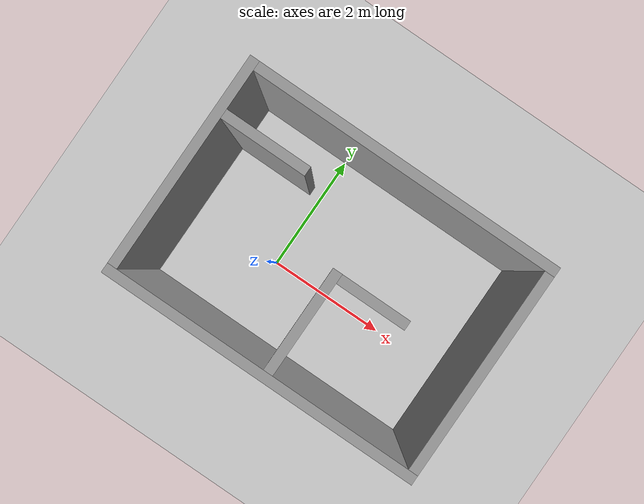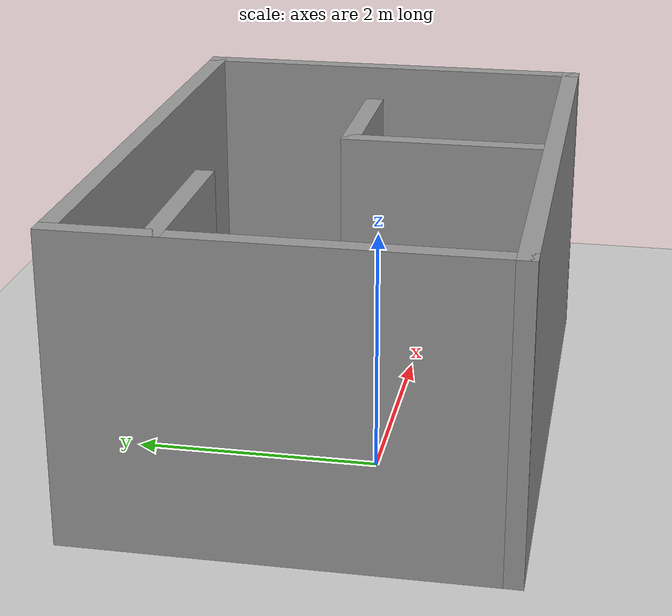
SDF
<sdf version="1.6">
 <world name="default">
  <light name="sun" type="directional">
   <pose>0 0 10 0 -0 0</pose>
   <diffuse>0.8 0.8 0.8 1</diffuse>
   <specular>0.2 0.2 0.2 1</specular>
   <attenuation>
    <range>1000</range>
    <constant>0.9</constant>
    <linear>0.01</linear>
    <quadratic>0.001</quadratic>
   </attenuation>
   <direction>-0.5 0.1 -0.9</direction>
  </light>
  <model name="ground_plane">
   <static>1</static>
   <link name="link">
    <collision name="collision">
     <geometry><plane><normal>0 0 1</normal><size>100 100</size></plane></geometry>
     <surface>
      <contact><collide_bitmask>65535</collide_bitmask></contact>
      <friction><ode><mu>100</mu><mu2>50</mu2></ode></friction>
     </surface>
    </collision>
    <visual name="visual">
     <cast_shadows>0</cast_shadows>
     <geometry><plane><normal>0 0 1</normal><size>100 100</size></plane></geometry>
     <material>
      <script><uri>file://media/materials/scripts/gazebo.material</uri><name>Gazebo/Grey</name></script>
     </material>
    </visual>
   </link>
  </model>
  <gravity>0 0 -9.8</gravity>
  <magnetic_field>6e-06 2.3e-05 -4.2e-05</magnetic_field>
  <atmosphere type="adiabatic"/>
  <physics name="default_physics" default="0" type="ode">
   <max_step_size>0.001</max_step_size>
   <real_time_factor>1</real_time_factor>
   <real_time_update_rate>1000</real_time_update_rate>
  </physics>
  <scene><ambient>0.4 0.4 0.4 1</ambient><background>0.7 0.7 0.7 1</background><shadows>1</shadows></scene>
  <audio><device>default</device></audio>
  <spherical_coordinates>
   <surface_model>EARTH_WGS84</surface_model>
   <latitude_deg>0</latitude_deg>
   <longitude_deg>0</longitude_deg>
   <elevation>0</elevation>
   <heading_deg>0</heading_deg>
  </spherical_coordinates>
  <model name="room">
   <pose>0.80771 0.408332 0 0 -0 0</pose>
   <link name="Wall_33">
    <collision name="Wall_33_Collision">
     <geometry><box><size>5 0.15 2.5</size></box></geometry>
     <pose>0 0 1.25 0 -0 0</pose>
    </collision>
    <visual name="Wall_33_Visual">
     <pose>0 0 1.25 0 -0 0</pose>
     <geometry><box><size>5 0.15 2.5</size></box></geometry>
     <material>
      <script><uri>file://media/materials/scripts/gazebo.material</uri><name>Gazebo/Grey</name></script>
      <ambient>1 1 1 1</ambient>
     </material>
     <meta><layer>0</layer></meta>
    </visual>
    <pose>-0 -1.675 0 0 -0 0</pose>
   </link>
   <link name="Wall_35">
    <collision name="Wall_35_Collision">
     <geometry><box><size>3.5 0.15 2.5</size></box></geometry>
     <pose>0 0 1.25 0 -0 0</pose>
    </collision>
    <visual name="Wall_35_Visual">
     <pose>0 0 1.25 0 -0 0</pose>
     <geometry><box><size>3.5 0.15 2.5</size></box></geometry>
     <material>
      <script><uri>file://media/materials/scripts/gazebo.material</uri><name>Gazebo/Grey</name></script>
      <ambient>1 1 1 1</ambient>
     </material>
     <meta><layer>0</layer></meta>
    </visual>
    <pose>-2.425 0 0 0 -0 1.5708</pose>
   </link>
   <link name="Wall_36">
    <collision name="Wall_36_Collision">
     <geometry><box><size>5 0.15 2.5</size></box></geometry>
     <pose>0 0 1.25 0 -0 0</pose>
    </collision>
    <visual name="Wall_36_Visual">
     <pose>0 0 1.25 0 -0 0</pose>
     <geometry><box><size>5 0.15 2.5</size></box></geometry>
     <material>
      <script><uri>file://media/materials/scripts/gazebo.material</uri><name>Gazebo/Grey</name></script>
      <ambient>1 1 1 1</ambient>
     </material>
     <meta><layer>0</layer></meta>
    </visual>
    <pose>-0 1.675 0 0 -0 0</pose>
   </link>
   <link name="Wall_37">
    <collision name="Wall_37_Collision">
     <geometry><box><size>3.5 0.15 2.5</size></box></geometry>
     <pose>0 0 1.25 0 -0 0</pose>
    </collision>
    <visual name="Wall_37_Visual">
     <pose>0 0 1.25 0 -0 0</pose>
     <geometry><box><size>3.5 0.15 2.5</size></box></geometry>
     <material>
      <script><uri>file://media/materials/scripts/gazebo.material</uri><name>Gazebo/Grey</name></script>
      <ambient>1 1 1 1</ambient>
     </material>
     <meta><layer>0</layer></meta>
    </visual>
    <pose>2.425 0 0 0 -0 -1.5708</pose>
   </link>
   <link name="Wall_39">
    <collision name="Wall_39_Collision">
     <geometry><box><size>1.75 0.15 2.5</size></box></geometry>
     <pose>0 0 1.25 0 -0 0</pose>
    </collision>
    <visual name="Wall_39_Visual">
     <pose>0 0 1.25 0 -0 0</pose>
     <geometry><box><size>1.75 0.15 2.5</size></box></geometry>
     <material>
      <script><uri>file://media/materials/scripts/gazebo.material</uri><name>Gazebo/Grey</name></script>
      <ambient>1 1 1 1</ambient>
     </material>
     <meta><layer>0</layer></meta>
    </visual>
    <pose>0.084822 -0.83376 0 0 -0 1.5708</pose>
   </link>
   <link name="Wall_40">
    <collision name="Wall_40_Collision">
     <geometry><box><size>1.25 0.15 2.5</size></box></geometry>
     <pose>0 0 1.25 0 -0 0</pose>
    </collision>
    <visual name="Wall_40_Visual">
     <pose>0 0 1.25 0 -0 0</pose>
     <geometry><box><size>1.25 0.15 2.5</size></box></geometry>
     <material>
      <script><uri>file://media/materials/scripts/gazebo.material</uri><name>Gazebo/Grey</name></script>
      <ambient>1 1 1 1</ambient>
     </material>
     <meta><layer>0</layer></meta>
    </visual>
    <pose>0.634822 -0.03376 0 0 -0 0</pose>
   </link>
   <link name="Wall_43">
    <collision name="Wall_43_Collision">
     <geometry><box><size>1.5 0.15 2.5</size></box></geometry>
     <pose>0 0 1.25 0 -0 0</pose>
    </collision>
    <visual name="Wall_43_Visual">
     <pose>0 0 1.25 0 -0 0</pose>
     <geometry><box><size>1.5 0.15 2.5</size></box></geometry>
     <material>
      <script><uri>file://media/materials/scripts/gazebo.material</uri><name>Gazebo/Grey</name></script>
      <ambient>1 1 1 1</ambient>
     </material>
     <meta><layer>0</layer></meta>
    </visual>
    <pose>-1.74446 0.904824 0 0 -0 0</pose>
   </link>
   <static>1</static>
  </model>
 </world>
</sdf>
